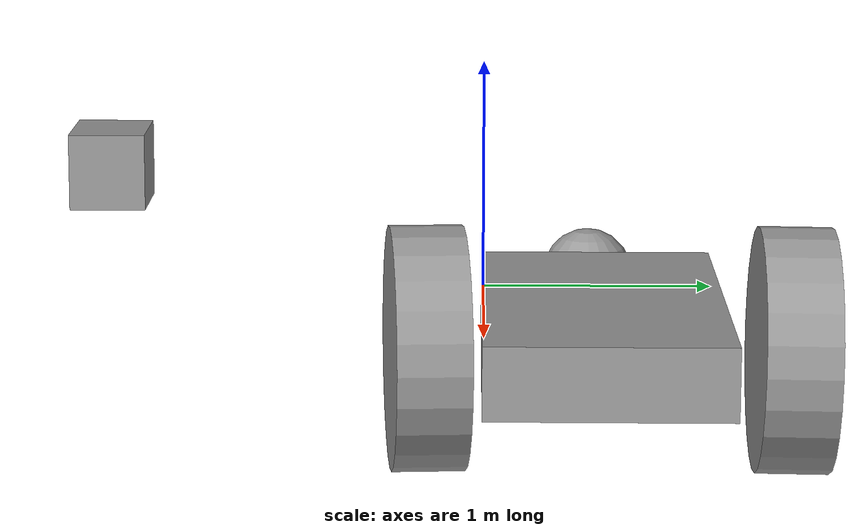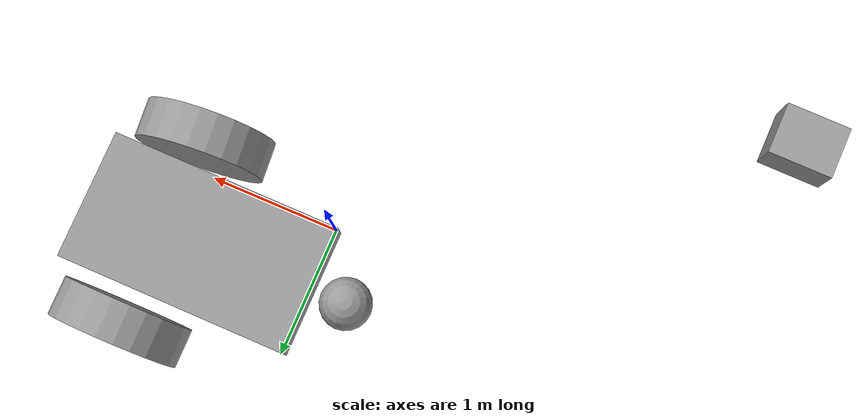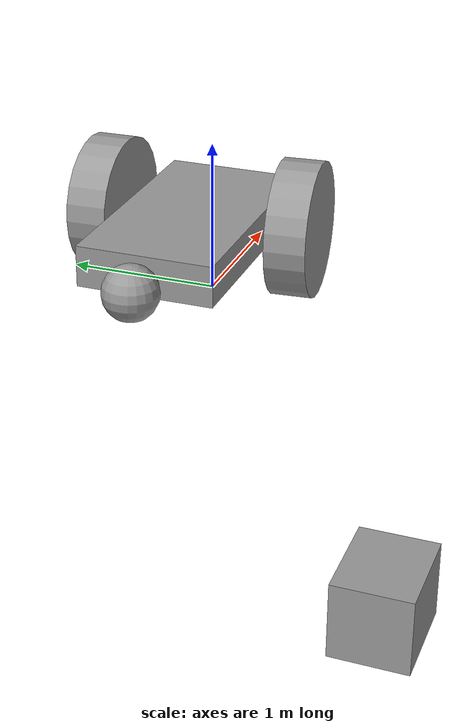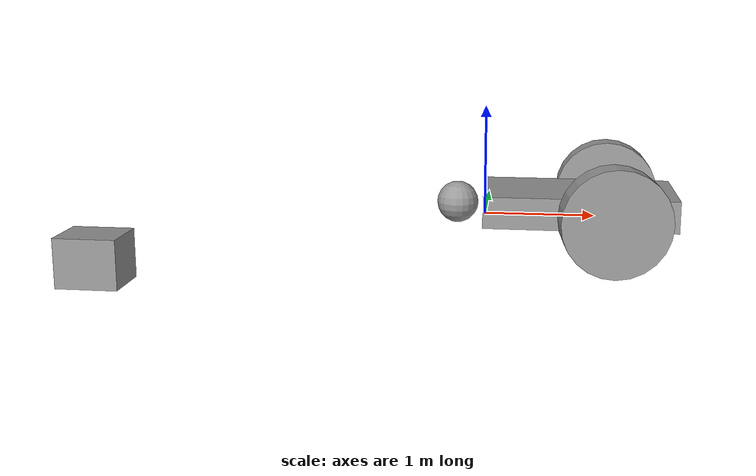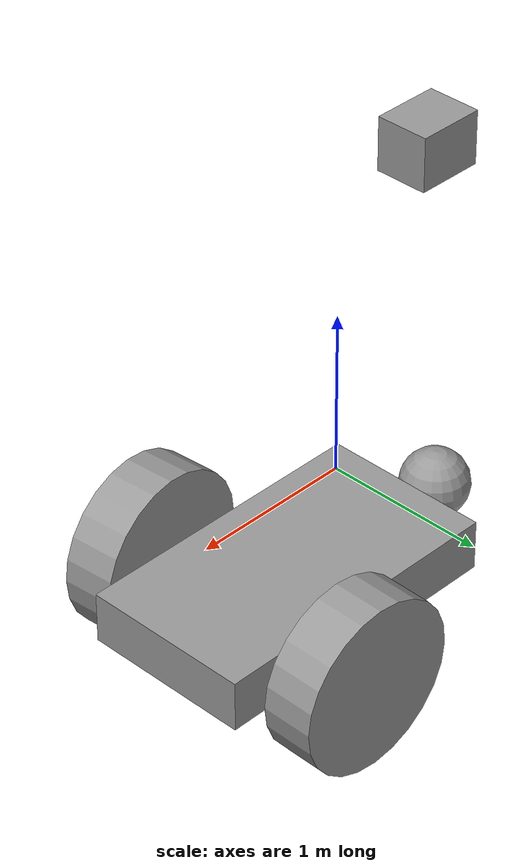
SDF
<?xml version='1.0'?>
<sdf version='1.6'>
  <model name='Untitled'>
    <link name='link_0'>
      <inertial>
        <mass>1</mass>
        <inertia>
          <ixx>0.166667</ixx>
          <ixy>0</ixy>
          <ixz>0</ixz>
          <iyy>0.166667</iyy>
          <iyz>0</iyz>
          <izz>0.166667</izz>
        </inertia>
        <pose frame=''>0 0 0 0 -0 0</pose>
      </inertial>
      <pose frame=''>0.877922 0.4903 -0.000836 0 -0 0</pose>
      <gravity>1</gravity>
      <self_collide>0</self_collide>
      <kinematic>0</kinematic>
      <enable_wind>0</enable_wind>
      <visual name='visual'>
        <pose frame=''>0 0 0 0 -0 0</pose>
        <geometry>
          <box>
            <size>1.8 1 0.3</size>
          </box>
        </geometry>
        <material>
          <lighting>1</lighting>
          <script>
            <uri>file://media/materials/scripts/gazebo.material</uri>
            <name>Gazebo/Grey</name>
          </script>
          <shader type='vertex'>
            <normal_map>__default__</normal_map>
          </shader>
          <ambient>0.3 0.3 0.3 1</ambient>
          <diffuse>0.7 0.7 0.7 1</diffuse>
          <specular>0.01 0.01 0.01 1</specular>
          <emissive>0 0 0 1</emissive>
        </material>
        <transparency>0</transparency>
        <cast_shadows>1</cast_shadows>
      </visual>
      <collision name='collision'>
        <laser_retro>0</laser_retro>
        <max_contacts>10</max_contacts>
        <pose frame=''>0 0 0 0 -0 0</pose>
        <geometry>
          <box>
            <size>1.9 1.1 0.4</size>
          </box>
        </geometry>
        <surface>
          <friction>
            <ode>
              <mu>1</mu>
              <mu2>1</mu2>
              <fdir1>0 0 0</fdir1>
              <slip1>0</slip1>
              <slip2>0</slip2>
            </ode>
            <torsional>
              <coefficient>1</coefficient>
              <patch_radius>0</patch_radius>
              <surface_radius>0</surface_radius>
              <use_patch_radius>1</use_patch_radius>
              <ode>
                <slip>0</slip>
              </ode>
            </torsional>
          </friction>
          <bounce>
            <restitution_coefficient>0</restitution_coefficient>
            <threshold>1e+06</threshold>
          </bounce>
          <contact>
            <collide_without_contact>0</collide_without_contact>
            <collide_without_contact_bitmask>1</collide_without_contact_bitmask>
            <collide_bitmask>1</collide_bitmask>
            <ode>
              <soft_cfm>0</soft_cfm>
              <soft_erp>0.2</soft_erp>
              <kp>1e+13</kp>
              <kd>1</kd>
              <max_vel>0.01</max_vel>
              <min_depth>0</min_depth>
            </ode>
            <bullet>
              <split_impulse>1</split_impulse>
              <split_impulse_penetration_threshold>-0.01</split_impulse_penetration_threshold>
              <soft_cfm>0</soft_cfm>
              <soft_erp>0.2</soft_erp>
              <kp>1e+13</kp>
              <kd>1</kd>
            </bullet>
          </contact>
        </surface>
      </collision>
    </link>
    <link name='link_1'>
      <inertial>
        <mass>1</mass>
        <inertia>
          <ixx>0.145833</ixx>
          <ixy>0</ixy>
          <ixz>0</ixz>
          <iyy>0.145833</iyy>
          <iyz>0</iyz>
          <izz>0.125</izz>
        </inertia>
        <pose frame=''>0 0 0 0 -0 0</pose>
      </inertial>
      <pose frame=''>1.18075 1.24936 -0.000836 1.55695 -0 0</pose>
      <gravity>1</gravity>
      <self_collide>0</self_collide>
      <kinematic>0</kinematic>
      <enable_wind>0</enable_wind>
      <visual name='visual'>
        <pose frame=''>0 0 0 0 -0 0</pose>
        <geometry>
          <cylinder>
            <radius>0.5</radius>
            <length>0.3</length>
          </cylinder>
        </geometry>
        <material>
          <lighting>1</lighting>
          <script>
            <uri>file://media/materials/scripts/gazebo.material</uri>
            <name>Gazebo/Grey</name>
          </script>
          <shader type='vertex'>
            <normal_map>__default__</normal_map>
          </shader>
          <ambient>0.3 0.3 0.3 1</ambient>
          <diffuse>0.7 0.7 0.7 1</diffuse>
          <specular>0.01 0.01 0.01 1</specular>
          <emissive>0 0 0 1</emissive>
        </material>
        <transparency>0</transparency>
        <cast_shadows>1</cast_shadows>
      </visual>
      <collision name='collision'>
        <laser_retro>0</laser_retro>
        <max_contacts>10</max_contacts>
        <pose frame=''>0 0 0 0 -0 0</pose>
        <geometry>
          <cylinder>
            <radius>0.6</radius>
            <length>0.4</length>
          </cylinder>
        </geometry>
        <surface>
          <friction>
            <ode>
              <mu>1</mu>
              <mu2>1</mu2>
              <fdir1>0 0 0</fdir1>
              <slip1>0</slip1>
              <slip2>0</slip2>
            </ode>
            <torsional>
              <coefficient>1</coefficient>
              <patch_radius>0</patch_radius>
              <surface_radius>0</surface_radius>
              <use_patch_radius>1</use_patch_radius>
              <ode>
                <slip>0</slip>
              </ode>
            </torsional>
          </friction>
          <bounce>
            <restitution_coefficient>0</restitution_coefficient>
            <threshold>1e+06</threshold>
          </bounce>
          <contact>
            <collide_without_contact>0</collide_without_contact>
            <collide_without_contact_bitmask>1</collide_without_contact_bitmask>
            <collide_bitmask>1</collide_bitmask>
            <ode>
              <soft_cfm>0</soft_cfm>
              <soft_erp>0.2</soft_erp>
              <kp>1e+13</kp>
              <kd>1</kd>
              <max_vel>0.01</max_vel>
              <min_depth>0</min_depth>
            </ode>
            <bullet>
              <split_impulse>1</split_impulse>
              <split_impulse_penetration_threshold>-0.01</split_impulse_penetration_threshold>
              <soft_cfm>0</soft_cfm>
              <soft_erp>0.2</soft_erp>
              <kp>1e+13</kp>
              <kd>1</kd>
            </bullet>
          </contact>
        </surface>
      </collision>
    </link>
    <link name='link_1_clone'>
      <inertial>
        <mass>1</mass>
        <inertia>
          <ixx>0.145833</ixx>
          <ixy>0</ixy>
          <ixz>0</ixz>
          <iyy>0.145833</iyy>
          <iyz>0</iyz>
          <izz>0.125</izz>
        </inertia>
        <pose frame=''>0 0 0 0 -0 0</pose>
      </inertial>
      <pose frame=''>1.17597 -0.232863 -0.000836 -1.57295 0.000182 0.084341</pose>
      <gravity>1</gravity>
      <self_collide>0</self_collide>
      <kinematic>0</kinematic>
      <enable_wind>0</enable_wind>
      <visual name='visual'>
        <pose frame=''>0 0 0 0 -0 0</pose>
        <geometry>
          <cylinder>
            <radius>0.5</radius>
            <length>0.3</length>
          </cylinder>
        </geometry>
        <material>
          <lighting>1</lighting>
          <script>
            <uri>file://media/materials/scripts/gazebo.material</uri>
            <name>Gazebo/Grey</name>
          </script>
          <shader type='vertex'>
            <normal_map>__default__</normal_map>
          </shader>
          <ambient>0.3 0.3 0.3 1</ambient>
          <diffuse>0.7 0.7 0.7 1</diffuse>
          <specular>0.01 0.01 0.01 1</specular>
          <emissive>0 0 0 1</emissive>
        </material>
        <transparency>0</transparency>
        <cast_shadows>1</cast_shadows>
      </visual>
      <collision name='collision'>
        <laser_retro>0</laser_retro>
        <max_contacts>10</max_contacts>
        <pose frame=''>0 0 0 0 -0 0</pose>
        <geometry>
          <cylinder>
            <radius>0.6</radius>
            <length>0.4</length>
          </cylinder>
        </geometry>
        <surface>
          <friction>
            <ode>
              <mu>1</mu>
              <mu2>1</mu2>
              <fdir1>0 0 0</fdir1>
              <slip1>0</slip1>
              <slip2>0</slip2>
            </ode>
            <torsional>
              <coefficient>1</coefficient>
              <patch_radius>0</patch_radius>
              <surface_radius>0</surface_radius>
              <use_patch_radius>1</use_patch_radius>
              <ode>
                <slip>0</slip>
              </ode>
            </torsional>
          </friction>
          <bounce>
            <restitution_coefficient>0</restitution_coefficient>
            <threshold>1e+06</threshold>
          </bounce>
          <contact>
            <collide_without_contact>0</collide_without_contact>
            <collide_without_contact_bitmask>1</collide_without_contact_bitmask>
            <collide_bitmask>1</collide_bitmask>
            <ode>
              <soft_cfm>0</soft_cfm>
              <soft_erp>0.2</soft_erp>
              <kp>1e+13</kp>
              <kd>1</kd>
              <max_vel>0.01</max_vel>
              <min_depth>0</min_depth>
            </ode>
            <bullet>
              <split_impulse>1</split_impulse>
              <split_impulse_penetration_threshold>-0.01</split_impulse_penetration_threshold>
              <soft_cfm>0</soft_cfm>
              <soft_erp>0.2</soft_erp>
              <kp>1e+13</kp>
              <kd>1</kd>
            </bullet>
          </contact>
        </surface>
      </collision>
    </link>
    <link name='link_2'>
      <inertial>
        <mass>1</mass>
        <inertia>
          <ixx>0.1</ixx>
          <ixy>0</ixy>
          <ixz>0</ixz>
          <iyy>0.1</iyy>
          <iyz>0</iyz>
          <izz>0.1</izz>
        </inertia>
        <pose frame=''>0 0 0 0 -0 0</pose>
      </inertial>
      <pose frame=''>-0.285252 0.469183 -0.000836 0 -0 0</pose>
      <gravity>1</gravity>
      <self_collide>0</self_collide>
      <kinematic>0</kinematic>
      <enable_wind>0</enable_wind>
      <visual name='visual'>
        <pose frame=''>0 0 0 0 -0 0</pose>
        <geometry>
          <sphere>
            <radius>0.2</radius>
          </sphere>
        </geometry>
        <material>
          <lighting>1</lighting>
          <script>
            <uri>file://media/materials/scripts/gazebo.material</uri>
            <name>Gazebo/Grey</name>
          </script>
          <shader type='vertex'>
            <normal_map>__default__</normal_map>
          </shader>
          <ambient>0.3 0.3 0.3 1</ambient>
          <diffuse>0.7 0.7 0.7 1</diffuse>
          <specular>0.01 0.01 0.01 1</specular>
          <emissive>0 0 0 1</emissive>
        </material>
        <transparency>0</transparency>
        <cast_shadows>1</cast_shadows>
      </visual>
      <collision name='collision'>
        <laser_retro>0</laser_retro>
        <max_contacts>10</max_contacts>
        <pose frame=''>0 0 0 0 -0 0</pose>
        <geometry>
          <sphere>
            <radius>0.25</radius>
          </sphere>
        </geometry>
        <surface>
          <friction>
            <ode>
              <mu>1</mu>
              <mu2>1</mu2>
              <fdir1>0 0 0</fdir1>
              <slip1>0</slip1>
              <slip2>0</slip2>
            </ode>
            <torsional>
              <coefficient>1</coefficient>
              <patch_radius>0</patch_radius>
              <surface_radius>0</surface_radius>
              <use_patch_radius>1</use_patch_radius>
              <ode>
                <slip>0</slip>
              </ode>
            </torsional>
          </friction>
          <bounce>
            <restitution_coefficient>0</restitution_coefficient>
            <threshold>1e+06</threshold>
          </bounce>
          <contact>
            <collide_without_contact>0</collide_without_contact>
            <collide_without_contact_bitmask>1</collide_without_contact_bitmask>
            <collide_bitmask>1</collide_bitmask>
            <ode>
              <soft_cfm>0</soft_cfm>
              <soft_erp>0.2</soft_erp>
              <kp>1e+13</kp>
              <kd>1</kd>
              <max_vel>0.01</max_vel>
              <min_depth>0</min_depth>
            </ode>
            <bullet>
              <split_impulse>1</split_impulse>
              <split_impulse_penetration_threshold>-0.01</split_impulse_penetration_threshold>
              <soft_cfm>0</soft_cfm>
              <soft_erp>0.2</soft_erp>
              <kp>1e+13</kp>
              <kd>1</kd>
            </bullet>
          </contact>
        </surface>
      </collision>
    </link>
    <link name='link_3'>
      <inertial>
        <mass>1</mass>
        <inertia>
          <ixx>0.166667</ixx>
          <ixy>0</ixy>
          <ixz>0</ixz>
          <iyy>0.166667</iyy>
          <iyz>0</iyz>
          <izz>0.166667</izz>
        </inertia>
        <pose frame=''>0 0 0 0 -0 0</pose>
      </inertial>
      <pose frame=''>-2.94939 -1.97598 0.003345 0 -0 0</pose>
      <gravity>1</gravity>
      <self_collide>0</self_collide>
      <kinematic>0</kinematic>
      <enable_wind>0</enable_wind>
      <visual name='visual'>
        <pose frame=''>0 0 0 0 -0 0</pose>
        <geometry>
          <box>
            <size>0.5 0.4 0.4</size>
          </box>
        </geometry>
        <material>
          <lighting>1</lighting>
          <script>
            <uri>file://media/materials/scripts/gazebo.material</uri>
            <name>Gazebo/Grey</name>
          </script>
          <shader type='vertex'>
            <normal_map>__default__</normal_map>
          </shader>
          <ambient>0.3 0.3 0.3 1</ambient>
          <diffuse>0.7 0.7 0.7 1</diffuse>
          <specular>0.01 0.01 0.01 1</specular>
          <emissive>0 0 0 1</emissive>
        </material>
        <transparency>0</transparency>
        <cast_shadows>1</cast_shadows>
      </visual>
      <collision name='collision'>
        <laser_retro>0</laser_retro>
        <max_contacts>10</max_contacts>
        <pose frame=''>0 0 0 0 -0 0</pose>
        <geometry>
          <box>
            <size>0.5 0.4 0.4</size>
          </box>
        </geometry>
        <surface>
          <friction>
            <ode>
              <mu>1</mu>
              <mu2>1</mu2>
              <fdir1>0 0 0</fdir1>
              <slip1>0</slip1>
              <slip2>0</slip2>
            </ode>
            <torsional>
              <coefficient>1</coefficient>
              <patch_radius>0</patch_radius>
              <surface_radius>0</surface_radius>
              <use_patch_radius>1</use_patch_radius>
              <ode>
                <slip>0</slip>
              </ode>
            </torsional>
          </friction>
          <bounce>
            <restitution_coefficient>0</restitution_coefficient>
            <threshold>1e+06</threshold>
          </bounce>
          <contact>
            <collide_without_contact>0</collide_without_contact>
            <collide_without_contact_bitmask>1</collide_without_contact_bitmask>
            <collide_bitmask>1</collide_bitmask>
            <ode>
              <soft_cfm>0</soft_cfm>
              <soft_erp>0.2</soft_erp>
              <kp>1e+13</kp>
              <kd>1</kd>
              <max_vel>0.01</max_vel>
              <min_depth>0</min_depth>
            </ode>
            <bullet>
              <split_impulse>1</split_impulse>
              <split_impulse_penetration_threshold>-0.01</split_impulse_penetration_threshold>
              <soft_cfm>0</soft_cfm>
              <soft_erp>0.2</soft_erp>
              <kp>1e+13</kp>
              <kd>1</kd>
            </bullet>
          </contact>
        </surface>
      </collision>
    </link>
    <joint name='link_0_JOINT_0' type='revolute'>
      <parent>link_0</parent>
      <child>link_1</child>
      <pose frame=''>0 0 0 0 -0 0</pose>
      <axis>
        <xyz>1 0 0</xyz>
        <use_parent_model_frame>0</use_parent_model_frame>
        <limit>
          <lower>-1.79769e+308</lower>
          <upper>1.79769e+308</upper>
          <effort>-1</effort>
          <velocity>-1</velocity>
        </limit>
        <dynamics>
          <spring_reference>0</spring_reference>
          <spring_stiffness>0</spring_stiffness>
          <damping>0</damping>
        </dynamics>
      </axis>
      <physics>
        <ode>
          <limit>
            <cfm>0</cfm>
            <erp>0.2</erp>
          </limit>
          <suspension>
            <cfm>0</cfm>
            <erp>0.2</erp>
          </suspension>
        </ode>
      </physics>
    </joint>
    <joint name='link_0_JOINT_1' type='revolute'>
      <parent>link_0</parent>
      <child>link_1_clone</child>
      <pose frame=''>0 0 0 0 -0 0</pose>
      <axis>
        <xyz>1 0 0</xyz>
        <use_parent_model_frame>0</use_parent_model_frame>
        <limit>
          <lower>-1.79769e+308</lower>
          <upper>1.79769e+308</upper>
          <effort>-1</effort>
          <velocity>-1</velocity>
        </limit>
        <dynamics>
          <spring_reference>0</spring_reference>
          <spring_stiffness>0</spring_stiffness>
          <damping>0</damping>
        </dynamics>
      </axis>
      <physics>
        <ode>
          <limit>
            <cfm>0</cfm>
            <erp>0.2</erp>
          </limit>
          <suspension>
            <cfm>0</cfm>
            <erp>0.2</erp>
          </suspension>
        </ode>
      </physics>
    </joint>
    <joint name='link_0_JOINT_2' type='fixed'>
      <parent>link_0</parent>
      <child>link_2</child>
      <pose frame=''>0 0 0 0 -0 0</pose>
      <physics>
        <ode>
          <limit>
            <cfm>0</cfm>
            <erp>0.2</erp>
          </limit>
          <suspension>
            <cfm>0</cfm>
            <erp>0.2</erp>
          </suspension>
        </ode>
      </physics>
    </joint>
    <static>0</static>
    <allow_auto_disable>1</allow_auto_disable>
  </model>
</sdf>
